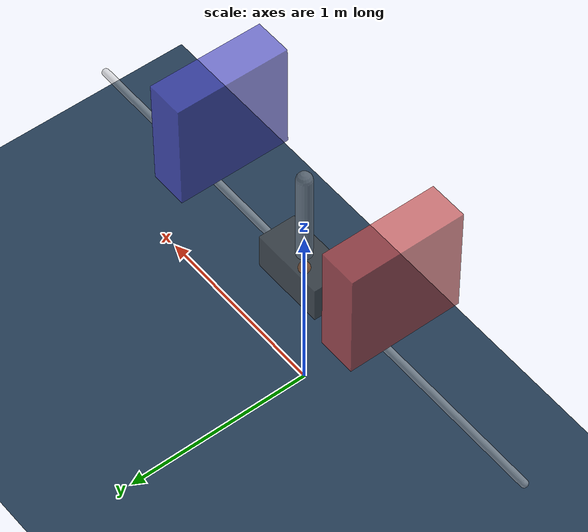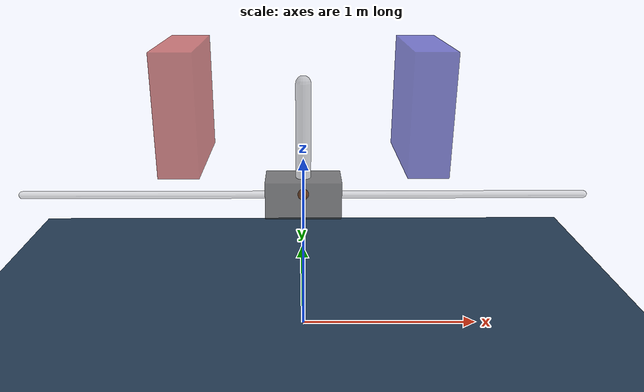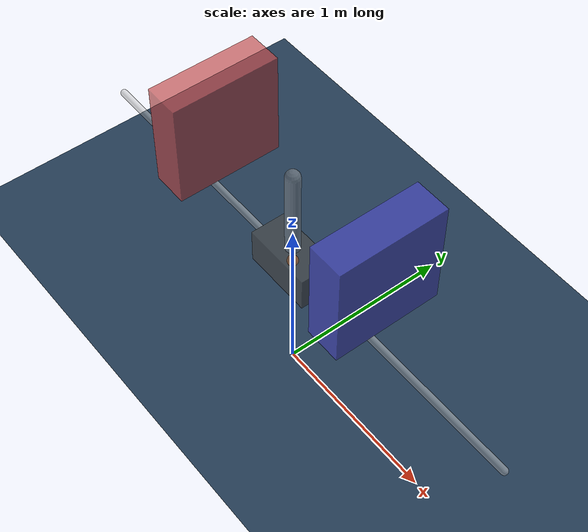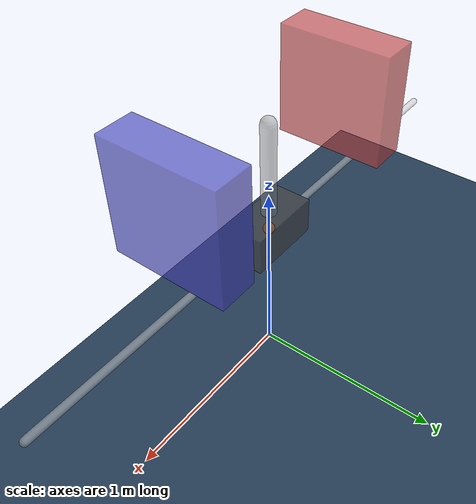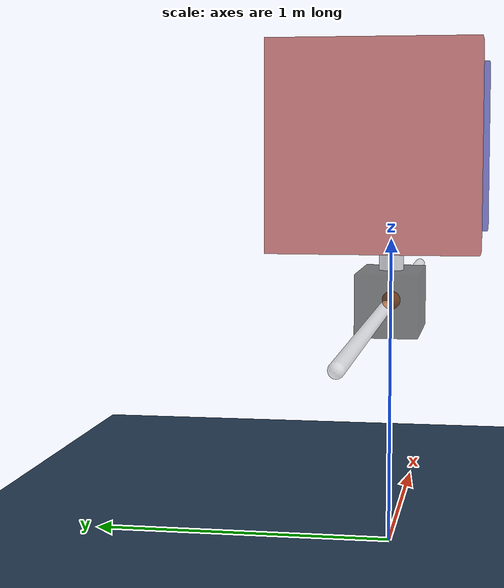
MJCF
<mujoco model="cartpole_walls">
    <include file="cartpole.xml"/>

    <!-- Override or add elements here -->
    <worldbody>

        <!-- Left wall very squishy + differentiable contact (solimp[0]=0, per mujoco docs)
             raised above cart body (bottom z=1.0, cart top z=0.9) so only the pole contacts it -->
        <body name="left_wall" pos="-0.6 0 1.3">
            <geom name="left_wall" type="box" size="0.1 0.3 0.3" rgba="0.8 0.3 0.3 0.7"
                  contype="1" conaffinity="1"
                  solref="0.2 1" solimp="0 0.9 0.1 0.5 2"/>
        </body>

        <!-- Right wall very squishy + differentiable contact (solimp[0]=0, per mujoco docs)
             raised above cart body (bottom z=1.0, cart top z=0.9) so only the pole contacts it -->
        <body name="right_wall" pos="0.6 0 1.3">
            <geom name="right_wall" type="box" size="0.1 0.3 0.3" rgba="0.3 0.3 0.8 0.7"
                  contype="1" conaffinity="1"
                  solref="0.2 1" solimp="0 0.9 0.1 0.5 2"/>
        </body>

    </worldbody>
</mujoco>

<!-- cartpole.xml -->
<mujoco model="cart_pole">

    <!-- Simulation settings -->
    <option solver="Newton" integrator="implicitfast" timestep="0.02" iterations="5" ls_iterations="5"/>

    <!-- Inertia is computed from geometry -->
    <compiler inertiafromgeom="true" />

    <!-- Default properties -->
    <default>
        <joint armature="0.0" damping="0.1" limited="true" />
        <geom contype="0" friction="0.1 0.1 0.1" />
    </default>

    <!-- Memory settings (default is 1000) -->
    <size nstack="3000" />

    <worldbody>
        <!-- Add light -->
        <light pos="1.0 0.5 0.0" dir="0 0 -1" directional="true"/>

        <!-- Add the Floor -->
        <geom name="floor" size="0 0 0.05" type="plane" material="groundplane"/>

        <!-- Origin -->
        <geom name="ball" pos="0 0 0.8" type="sphere" size="0.03" rgba="1.0 0.424 0.047 1"/>

        <!-- Rail -->
        <geom name="rail" pos="0 0 0.8" quat="0.707 0 0.707 0" type="capsule" size="0.02 1.5" rgba="0.8 0.8 0.8 0.5"/>

        <!-- Cart -->
        <body name="cart" pos="0 0 0.8">
            <geom name="cart" pos="0 0 0" size="0.2 0.1 0.1" type="box" rgba="0.3 0.3 0.3 0.7"/>
            <joint axis="1 0 0" limited="true" name="cart_pos" pos="0 0 0.1" range="-1.5 1.5" type="slide"
                   solreflimit="0.2 1" solimplimit="0 0.9 0.1 0.5 2"/>

            <!-- Pole -->
            <body name="pole" pos="0 0 0">
                <geom name="pole" fromto="0 0 0 0 0 0.6" size="0.04 0.36" type="capsule" rgba="0.6 0.6 0.6 0.5"/>
                <joint axis="0 -1 0" name="pole_angle" pos="0 0 0" range="-inf inf" type="hinge" />
            </body>

        </body>

    </worldbody>

    <!-- Actuator -->
    <actuator>
        <motor name="slide" joint="cart_pos"/>
    </actuator>

    <!-- default configuration (when you press "Load key" button) -->
    <keyframe>
        <key name="default" qpos="0 3.14" qvel="0 0" />
    </keyframe>

    <!-- Specify the light settings -->
    <asset>
        <texture type="skybox" builtin="flat" rgb1="0 0 0" rgb2="0 0 0" width="512" height="3072"/>
        <texture type="2d" name="groundplane" builtin="checker" mark="edge" rgb1="0.2 0.3 0.4" rgb2="0.1 0.2 0.3" markrgb="0.9 0.9 0.9" width="300" height="300"/>
        <material name="groundplane" texture="groundplane" texuniform="true" texrepeat="5 5" reflectance="0.2"/>
    </asset>

</mujoco>
